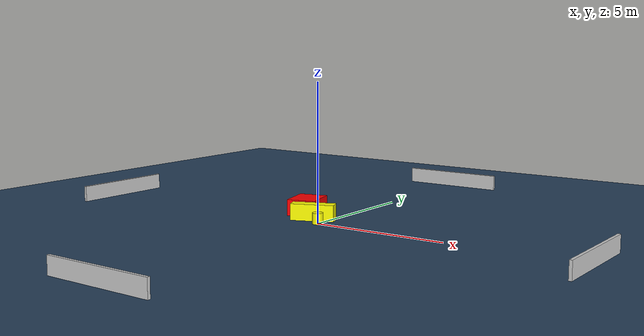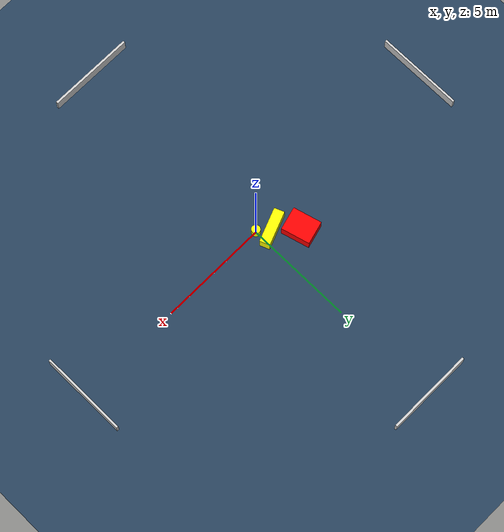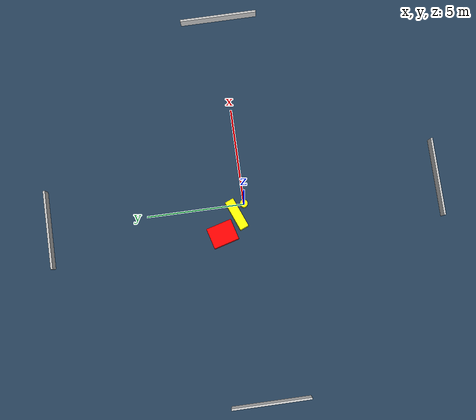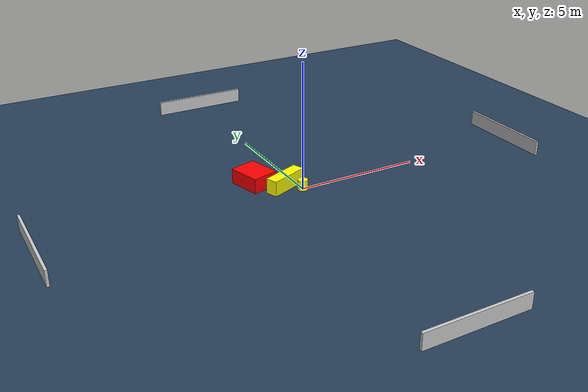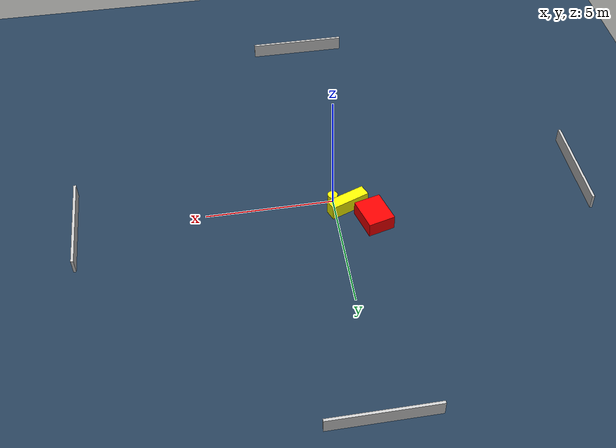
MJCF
<?xml version="1.0" ?>
<mujoco model="generated_environment">
  <option timestep="0.01" integrator="RK4" cone="elliptic"/>
  <default>
    <geom density="1"/>
  </default>
  <asset>
    <texture builtin="gradient" height="3072" name="skybox" rgb1="0.3 0.5 0.7" rgb2="0 0 0" type="skybox" width="512"/>
    <texture builtin="checker" height="300" name="groundplane" rgb1="0.2 0.3 0.4" rgb2="0.1 0.2 0.3" type="2d" width="300"/>
    <material name="groundplane" reflectance="0.2" texrepeat="5 5" texture="groundplane"/>
  </asset>
  <worldbody>
    <light dir="0 0 -1" directional="true" pos="0 0 1.5"/>
    <geom condim="3" friction="0.5 0.005 0.001" material="groundplane" name="floor" pos="0 0 0" size="0 0 0.05" type="plane"/>
    <body name="walls">
      <geom name="wall_1" condim="4" pos="-10.0 0.0 0.3" rgba="0.800000011920929 0.800000011920929 0.800000011920929 1.0" size="0.05 2.0 0.3" type="box"/>
      <geom name="wall_2" condim="4" pos="10.0 0.0 0.3" rgba="0.800000011920929 0.800000011920929 0.800000011920929 1.0" size="0.05 2.0 0.3" type="box"/>
      <geom name="wall_3" condim="4" pos="0.0 -10.0 0.3" rgba="0.800000011920929 0.800000011920929 0.800000011920929 1.0" size="2.0 0.05 0.3" type="box"/>
      <geom name="wall_4" condim="4" pos="0.0 10.0 0.3" rgba="0.800000011920929 0.800000011920929 0.800000011920929 1.0" size="2.0 0.05 0.3" type="box"/>
    </body>
    <body name="robot">
      <joint name="joint_x" type="slide" pos="0 0 0" axis="1 0 0"/>
      <joint name="joint_y" type="slide" pos="0 0 0" axis="0 1 0"/>
      <geom name="robot" type="cylinder" pos="0.0 0.0 0.2" size="0.2 0.2 0.0" mass="5.0" friction="1.0 0.005 0.0001" condim="4" rgba="1.0 1.0 0.0 1.0"/>
    </body>
    <body name="obstacle_1_movable">
      <geom name="obstacle_1_movable" condim="4" pos="-0.5202897977480537 0.4389386200970805 0.3" euler="0 0 291.73515393171533" friction="0.0 0.005 0.001" rgba="1.0 1.0 0.0 1.0" size="0.23628487282451033 0.7987246087542972 0.3" type="box" mass="0.1"/>
      <joint type="free"/>
    </body>
    <body name="obstacle_2_static">
      <geom name="obstacle_2_static" condim="4" pos="-1.4170355202070368 1.280940842776778 0.3" euler="0 0 105.30681193306258" friction="0.0 0.005 0.001" rgba="1.0 0.0 0.0 1.0" size="0.6641537464097782 0.5356163662235498 0.3" type="box"/>
    </body>
  </worldbody>
  <actuator>
    <motor name="actuator_x" joint="joint_x" gear="1" ctrlrange="-1 1"/>
    <motor name="actuator_y" joint="joint_y" gear="1" ctrlrange="-1 1"/>
  </actuator>
</mujoco>
